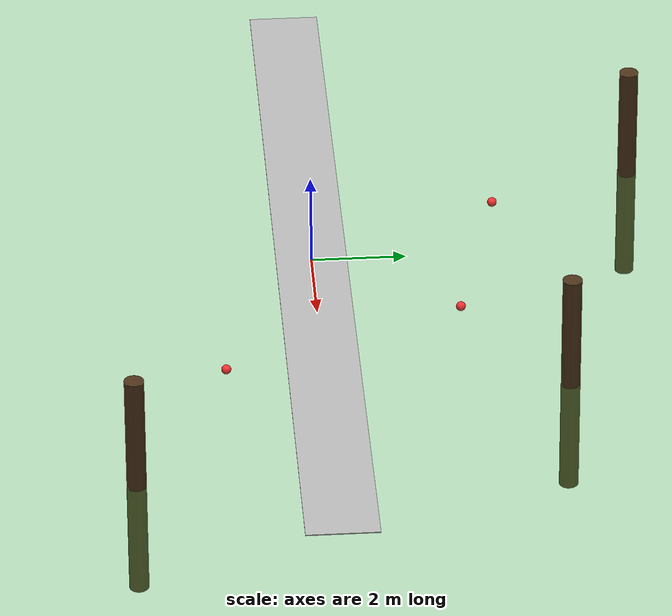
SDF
<sdf version="1.4">
 <world name="enhanced_garden">
  <physics type="ode">
   <max_step_size>0.001</max_step_size>
   <real_time_update_rate>1000</real_time_update_rate>
   <gravity>0 0 -9.81</gravity>
  </physics>
  <light name="sun" type="directional">
   <pose>0 0 10 0 -0.5 0.5</pose>
   <diffuse>0.9 0.9 0.8 1</diffuse>
   <specular>0.2 0.2 0.2 1</specular>
   <direction>-0.5 0.5 -1</direction>
  </light>
  <light name="ambient" type="directional">
   <cast_shadows>false</cast_shadows>
   <pose>0 0 10 0 0 0</pose>
   <diffuse>0.3 0.3 0.3 1</diffuse>
   <specular>0.1 0.1 0.1 1</specular>
  </light>
  <model name="ground_plane">
   <static>true</static>
   <link name="ground_plane_link">
    <collision name="collision">
     <geometry><plane><normal>0 0 1</normal><size>40 40</size></plane></geometry>
    </collision>
    <visual name="grass">
     <geometry><plane><normal>0 0 1</normal><size>40 40</size></plane></geometry>
     <material>
      <script><uri>file://media/materials/scripts/gazebo.material</uri><name>Gazebo/Grass</name></script>
     </material>
    </visual>
   </link>
  </model>
  <model name="pathway">
   <static>true</static>
   <pose>0 0 0.01 0 0 0</pose>
   <link name="path_link">
    <visual name="visual">
     <geometry><box><size>20 1.5 0.02</size></box></geometry>
     <material>
      <script><uri>file://media/materials/scripts/gazebo.material</uri><name>Gazebo/Stone</name></script>
     </material>
    </visual>
   </link>
  </model>
  <include><uri>model://garden_tree</uri><name>tree1</name><pose>5 5 0 0 0 0</pose></include>
  <include>
   <uri>model://garden_tree</uri>
   <name>tree2</name>
   <pose>-3 7 0 0 0 0.5</pose>
   <scale>1.2 1.2 1.3</scale>
  </include>
  <include>
   <uri>model://garden_tree</uri>
   <name>tree3</name>
   <pose>8 -4 0 0 0 1.0</pose>
   <scale>0.8 0.8 0.9</scale>
  </include>
  <include><uri>model://garden_flower</uri><name>flower1</name><pose>2 3 0 0 0 0</pose></include>
  <include><uri>model://garden_flower</uri><name>flower2</name><pose>-2 4 0 0 0 0</pose></include>
  <include><uri>model://garden_flower</uri><name>flower3</name><pose>4 -2 0 0 0 0</pose></include>
 </world>
</sdf>

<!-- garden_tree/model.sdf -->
<sdf version="1.4">
  <model name="garden_tree">
    <static>true</static>
    <link name="trunk">
      <collision name="collision">
        <geometry>
          <cylinder>
            <radius>0.2</radius>
            <length>5.0</length>
          </cylinder>
        </geometry>
      </collision>
      <visual name="trunk">
        <geometry>
          <cylinder>
            <radius>0.2</radius>
            <length>5.0</length>
          </cylinder>
        </geometry>
        <material>
          <ambient>0.3 0.2 0.1 1.0</ambient>
          <diffuse>0.3 0.2 0.1 1.0</diffuse>
        </material>
      </visual>
    </link>
  </model>
</sdf>

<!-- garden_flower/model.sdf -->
<sdf version="1.4">
  <model name="garden_flower">
    <static>true</static>
    <link name="flower">
      <visual name="petals">
        <geometry>
          <sphere>
            <radius>0.1</radius>
          </sphere>
        </geometry>
        <material>
          <ambient>1.0 0.2 0.2 1.0</ambient>
          <diffuse>1.0 0.2 0.2 1.0</diffuse>
        </material>
      </visual>
    </link>
  </model>
</sdf>
